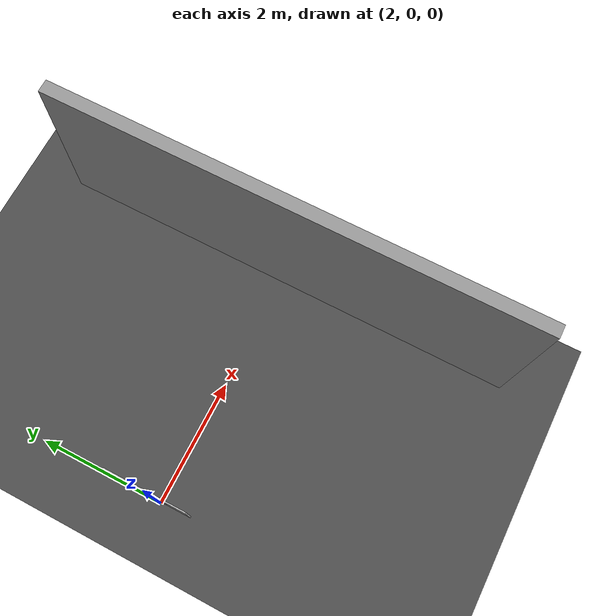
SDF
<sdf version="1.7">
 <world name="default">
  <light name="sun" type="directional">
   <pose>0 0 10 0 -0 0</pose>
   <diffuse>0.8 0.8 0.8 1</diffuse>
   <specular>0.2 0.2 0.2 1</specular>
   <attenuation>
    <range>1000</range>
    <constant>0.9</constant>
    <linear>0.01</linear>
    <quadratic>0.001</quadratic>
   </attenuation>
   <direction>-0.5 0.1 -0.9</direction>
   <spot><inner_angle>0</inner_angle><outer_angle>0</outer_angle><falloff>0</falloff></spot>
  </light>
  <gravity>0 0 -9.8</gravity>
  <magnetic_field>6e-06 2.3e-05 -4.2e-05</magnetic_field>
  <atmosphere type="adiabatic"/>
  <physics type="ode">
   <max_step_size>0.001</max_step_size>
   <real_time_factor>1</real_time_factor>
   <real_time_update_rate>1000</real_time_update_rate>
  </physics>
  <scene><ambient>0.4 0.4 0.4 1</ambient><background>0.7 0.7 0.7 1</background><shadows>1</shadows></scene>
  <spherical_coordinates>
   <surface_model>EARTH_WGS84</surface_model>
   <latitude_deg>0</latitude_deg>
   <longitude_deg>0</longitude_deg>
   <elevation>0</elevation>
   <heading_deg>0</heading_deg>
  </spherical_coordinates>
  <model name="carlos_board">
   <pose>2.01 0 1.1 0 -0 0</pose>
   <static>1</static>
   <link name="body">
    <inertial><mass>1</mass></inertial>
    <visual name="visual">
     <geometry><mesh><uri>model://carlos_board/meshes/carlos_board.dae</uri></mesh></geometry>
     <material>
      <script>
       <uri>model://carlos_board/materials/scripts</uri>
       <uri>model://carlos_board/materials/textures</uri>
       <name>Carlos/Maple</name>
      </script>
     </material>
    </visual>
    <collision name="collision">
     <geometry><mesh><uri>model://carlos_board/meshes/wood_pattern.stl</uri></mesh></geometry>
    </collision>
   </link>
  </model>
  <model name="grey_wall">
   <static>1</static>
   <link name="link">
    <pose>0 0 1.4 0 -0 0</pose>
    <collision name="collision"><geometry><box><size>7.5 0.2 2.8</size></box></geometry></collision>
    <visual name="visual">
     <cast_shadows>0</cast_shadows>
     <geometry><box><size>7.5 0.2 2.8</size></box></geometry>
     <material>
      <script>
       <uri>model://grey_wall/materials/scripts</uri>
       <uri>model://grey_wall/materials/textures</uri>
       <name>vrc/grey_wall</name>
      </script>
     </material>
    </visual>
   </link>
   <pose>6 0 0 0 -0 1.57</pose>
  </model>
  <model name="asphalt_plane">
   <static>1</static>
   <link name="link">
    <collision name="collision"><geometry><box><size>20 20 0.1</size></box></geometry></collision>
    <visual name="visual">
     <cast_shadows>0</cast_shadows>
     <geometry><box><size>20 20 0.1</size></box></geometry>
     <material>
      <script>
       <uri>model://asphalt_plane/materials/scripts</uri>
       <uri>model://asphalt_plane/materials/textures</uri>
       <name>vrc/asphalt</name>
      </script>
     </material>
    </visual>
   </link>
   <pose>0 0 -0.05 0 -0 0</pose>
  </model>
 </world>
</sdf>
